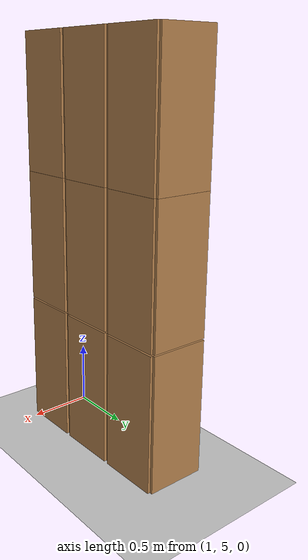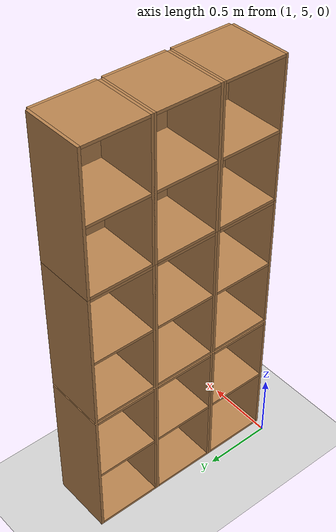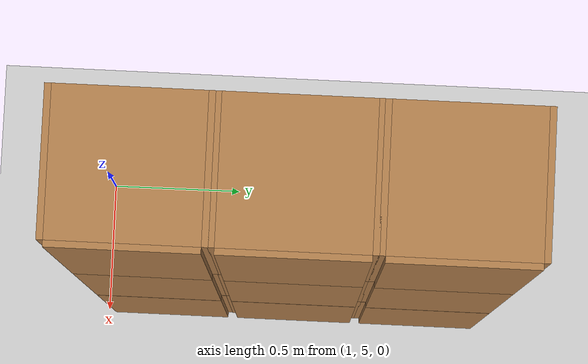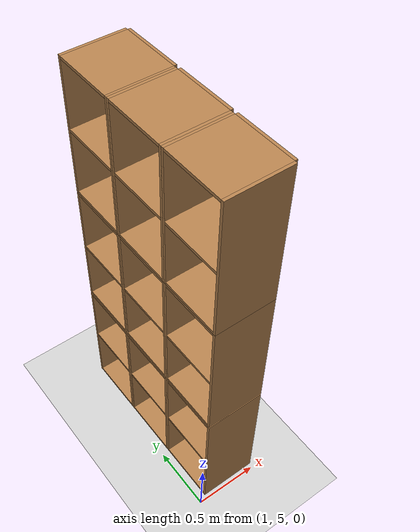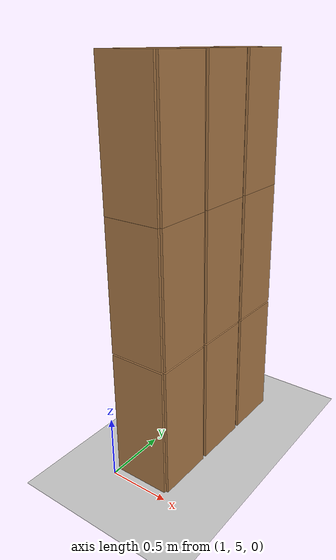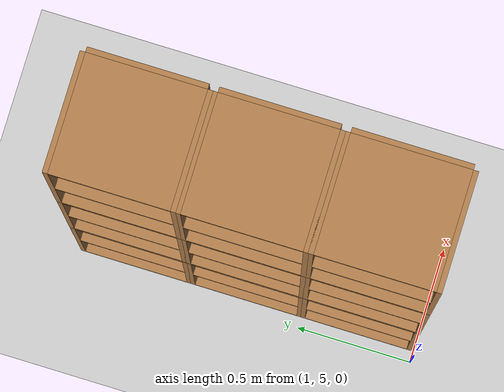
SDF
<sdf version="1.6">
 <world name="default">
  <model name="ground_plane">
   <static>1</static>
   <link name="link">
    <collision name="collision">
     <geometry><plane><normal>0 0 1</normal><size>100 100</size></plane></geometry>
     <surface>
      <contact><collide_bitmask>65535</collide_bitmask></contact>
      <friction><ode><mu>100</mu><mu2>50</mu2></ode></friction>
     </surface>
    </collision>
    <visual name="visual">
     <cast_shadows>0</cast_shadows>
     <geometry><plane><normal>0 0 1</normal><size>100 100</size></plane></geometry>
     <material>
      <script><uri>file://media/materials/scripts/gazebo.material</uri><name>Gazebo/Grey</name></script>
     </material>
    </visual>
   </link>
  </model>
  <model name="Locker18_clone_4_clone_2_clone">
   <model name="Locker18">
    <model name="Locker3">
     <model name="cabinet">
      <static>1</static>
      <link name="cabinet_bottom_plate">
       <inertial>
        <pose>0 0 -1 0 -0 0</pose>
        <inertia><ixx>2.05</ixx><ixy>0</ixy><ixz>0</ixz><iyy>2.05</iyy><iyz>0</iyz><izz>2.05</izz></inertia>
        <mass>25</mass>
       </inertial>
       <collision name="cabinet_bottom_plate_geom">
        <pose>0 0 0.01 0 -0 0</pose>
        <geometry><box><size>0.45 0.45 0.02</size></box></geometry>
       </collision>
       <visual name="cabinet_bottom_plate_geom_visual">
        <pose>0 0 0.01 0 -0 0</pose>
        <geometry><box><size>0.45 0.45 0.02</size></box></geometry>
        <material>
         <script><uri>file://media/materials/scripts/gazebo.material</uri><name>Gazebo/Wood</name></script>
        </material>
       </visual>
       <collision name="cabinet_bottom_plate_geom_cabinet_back_plate">
        <pose>0.235 0 0.51 0 -0 0</pose>
        <geometry><box><size>0.02 0.45 1.02</size></box></geometry>
       </collision>
       <visual name="cabinet_bottom_plate_geom_cabinet_back_plate_visual">
        <pose>0.235 0 0.51 0 -0 0</pose>
        <geometry><box><size>0.02 0.45 1.02</size></box></geometry>
        <material>
         <script><uri>file://media/materials/scripts/gazebo.material</uri><name>Gazebo/Wood</name></script>
        </material>
       </visual>
       <collision name="cabinet_bottom_plate_geom_cabinet_left_plate">
        <pose>0 0.235 0.51 0 -0 0</pose>
        <geometry><box><size>0.45 0.02 1.02</size></box></geometry>
       </collision>
       <visual name="cabinet_bottom_plate_geom_cabinet_left_plate_visual">
        <pose>0 0.235 0.51 0 -0 0</pose>
        <geometry><box><size>0.45 0.02 1.02</size></box></geometry>
        <material>
         <script><uri>file://media/materials/scripts/gazebo.material</uri><name>Gazebo/Wood</name></script>
        </material>
       </visual>
       <collision name="cabinet_bottom_plate_geom_cabinet_middle_plate">
        <pose>0 0 0.51 0 -0 0</pose>
        <geometry><box><size>0.45 0.45 0.02</size></box></geometry>
       </collision>
       <visual name="cabinet_bottom_plate_geom_cabinet_middle_plate_visual">
        <pose>0 0 0.51 0 -0 0</pose>
        <geometry><box><size>0.45 0.45 0.02</size></box></geometry>
        <material>
         <script><uri>file://media/materials/scripts/gazebo.material</uri><name>Gazebo/Wood</name></script>
        </material>
       </visual>
       <collision name="cabinet_bottom_plate_geom_cabinet_right_plate">
        <pose>0 -0.235 0.51 0 -0 0</pose>
        <geometry><box><size>0.45 0.02 1.02</size></box></geometry>
       </collision>
       <visual name="cabinet_bottom_plate_geom_cabinet_right_plate_visual">
        <pose>0 -0.235 0.51 0 -0 0</pose>
        <geometry><box><size>0.45 0.02 1.02</size></box></geometry>
        <material>
         <script><uri>file://media/materials/scripts/gazebo.material</uri><name>Gazebo/Wood</name></script>
        </material>
       </visual>
       <collision name="cabinet_bottom_plate_geom_cabinet_top_plate">
        <pose>0 0 1.01 0 -0 0</pose>
        <geometry><box><size>0.45 0.45 0.02</size></box></geometry>
       </collision>
       <visual name="cabinet_bottom_plate_geom_cabinet_top_plate_visual">
        <pose>0 0 1.01 0 -0 0</pose>
        <geometry><box><size>0.45 0.45 0.02</size></box></geometry>
        <material>
         <script><uri>file://media/materials/scripts/gazebo.material</uri><name>Gazebo/Wood</name></script>
        </material>
       </visual>
      </link>
      <pose>-0.676968 1.45758 0 0 -0 0</pose>
     </model>
     <model name="cabinet_clone">
      <static>1</static>
      <link name="cabinet_bottom_plate">
       <inertial>
        <pose>0 0 -1 0 -0 0</pose>
        <inertia><ixx>2.05</ixx><ixy>0</ixy><ixz>0</ixz><iyy>2.05</iyy><iyz>0</iyz><izz>2.05</izz></inertia>
        <mass>25</mass>
       </inertial>
       <collision name="cabinet_bottom_plate_geom">
        <pose>0 0 0.01 0 -0 0</pose>
        <geometry><box><size>0.45 0.45 0.02</size></box></geometry>
       </collision>
       <visual name="cabinet_bottom_plate_geom_visual">
        <pose>0 0 0.01 0 -0 0</pose>
        <geometry><box><size>0.45 0.45 0.02</size></box></geometry>
        <material>
         <script><uri>file://media/materials/scripts/gazebo.material</uri><name>Gazebo/Wood</name></script>
        </material>
       </visual>
       <collision name="cabinet_bottom_plate_geom_cabinet_back_plate">
        <pose>0.235 0 0.51 0 -0 0</pose>
        <geometry><box><size>0.02 0.45 1.02</size></box></geometry>
       </collision>
       <visual name="cabinet_bottom_plate_geom_cabinet_back_plate_visual">
        <pose>0.235 0 0.51 0 -0 0</pose>
        <geometry><box><size>0.02 0.45 1.02</size></box></geometry>
        <material>
         <script><uri>file://media/materials/scripts/gazebo.material</uri><name>Gazebo/Wood</name></script>
        </material>
       </visual>
       <collision name="cabinet_bottom_plate_geom_cabinet_left_plate">
        <pose>0 0.235 0.51 0 -0 0</pose>
        <geometry><box><size>0.45 0.02 1.02</size></box></geometry>
       </collision>
       <visual name="cabinet_bottom_plate_geom_cabinet_left_plate_visual">
        <pose>0 0.235 0.51 0 -0 0</pose>
        <geometry><box><size>0.45 0.02 1.02</size></box></geometry>
        <material>
         <script><uri>file://media/materials/scripts/gazebo.material</uri><name>Gazebo/Wood</name></script>
        </material>
       </visual>
       <collision name="cabinet_bottom_plate_geom_cabinet_middle_plate">
        <pose>0 0 0.51 0 -0 0</pose>
        <geometry><box><size>0.45 0.45 0.02</size></box></geometry>
       </collision>
       <visual name="cabinet_bottom_plate_geom_cabinet_middle_plate_visual">
        <pose>0 0 0.51 0 -0 0</pose>
        <geometry><box><size>0.45 0.45 0.02</size></box></geometry>
        <material>
         <script><uri>file://media/materials/scripts/gazebo.material</uri><name>Gazebo/Wood</name></script>
        </material>
       </visual>
       <collision name="cabinet_bottom_plate_geom_cabinet_right_plate">
        <pose>0 -0.235 0.51 0 -0 0</pose>
        <geometry><box><size>0.45 0.02 1.02</size></box></geometry>
       </collision>
       <visual name="cabinet_bottom_plate_geom_cabinet_right_plate_visual">
        <pose>0 -0.235 0.51 0 -0 0</pose>
        <geometry><box><size>0.45 0.02 1.02</size></box></geometry>
        <material>
         <script><uri>file://media/materials/scripts/gazebo.material</uri><name>Gazebo/Wood</name></script>
        </material>
       </visual>
       <collision name="cabinet_bottom_plate_geom_cabinet_top_plate">
        <pose>0 0 1.01 0 -0 0</pose>
        <geometry><box><size>0.45 0.45 0.02</size></box></geometry>
       </collision>
       <visual name="cabinet_bottom_plate_geom_cabinet_top_plate_visual">
        <pose>0 0 1.01 0 -0 0</pose>
        <geometry><box><size>0.45 0.45 0.02</size></box></geometry>
        <material>
         <script><uri>file://media/materials/scripts/gazebo.material</uri><name>Gazebo/Wood</name></script>
        </material>
       </visual>
      </link>
      <pose>-0.676968 0.970971 0 0 -0 0</pose>
     </model>
     <model name="cabinet_clone_0">
      <static>1</static>
      <link name="cabinet_bottom_plate">
       <inertial>
        <pose>0 0 -1 0 -0 0</pose>
        <inertia><ixx>2.05</ixx><ixy>0</ixy><ixz>0</ixz><iyy>2.05</iyy><iyz>0</iyz><izz>2.05</izz></inertia>
        <mass>25</mass>
       </inertial>
       <collision name="cabinet_bottom_plate_geom">
        <pose>0 0 0.01 0 -0 0</pose>
        <geometry><box><size>0.45 0.45 0.02</size></box></geometry>
       </collision>
       <visual name="cabinet_bottom_plate_geom_visual">
        <pose>0 0 0.01 0 -0 0</pose>
        <geometry><box><size>0.45 0.45 0.02</size></box></geometry>
        <material>
         <script><uri>file://media/materials/scripts/gazebo.material</uri><name>Gazebo/Wood</name></script>
        </material>
       </visual>
       <collision name="cabinet_bottom_plate_geom_cabinet_back_plate">
        <pose>0.235 0 0.51 0 -0 0</pose>
        <geometry><box><size>0.02 0.45 1.02</size></box></geometry>
       </collision>
       <visual name="cabinet_bottom_plate_geom_cabinet_back_plate_visual">
        <pose>0.235 0 0.51 0 -0 0</pose>
        <geometry><box><size>0.02 0.45 1.02</size></box></geometry>
        <material>
         <script><uri>file://media/materials/scripts/gazebo.material</uri><name>Gazebo/Wood</name></script>
        </material>
       </visual>
       <collision name="cabinet_bottom_plate_geom_cabinet_left_plate">
        <pose>0 0.235 0.51 0 -0 0</pose>
        <geometry><box><size>0.45 0.02 1.02</size></box></geometry>
       </collision>
       <visual name="cabinet_bottom_plate_geom_cabinet_left_plate_visual">
        <pose>0 0.235 0.51 0 -0 0</pose>
        <geometry><box><size>0.45 0.02 1.02</size></box></geometry>
        <material>
         <script><uri>file://media/materials/scripts/gazebo.material</uri><name>Gazebo/Wood</name></script>
        </material>
       </visual>
       <collision name="cabinet_bottom_plate_geom_cabinet_middle_plate">
        <pose>0 0 0.51 0 -0 0</pose>
        <geometry><box><size>0.45 0.45 0.02</size></box></geometry>
       </collision>
       <visual name="cabinet_bottom_plate_geom_cabinet_middle_plate_visual">
        <pose>0 0 0.51 0 -0 0</pose>
        <geometry><box><size>0.45 0.45 0.02</size></box></geometry>
        <material>
         <script><uri>file://media/materials/scripts/gazebo.material</uri><name>Gazebo/Wood</name></script>
        </material>
       </visual>
       <collision name="cabinet_bottom_plate_geom_cabinet_right_plate">
        <pose>0 -0.235 0.51 0 -0 0</pose>
        <geometry><box><size>0.45 0.02 1.02</size></box></geometry>
       </collision>
       <visual name="cabinet_bottom_plate_geom_cabinet_right_plate_visual">
        <pose>0 -0.235 0.51 0 -0 0</pose>
        <geometry><box><size>0.45 0.02 1.02</size></box></geometry>
        <material>
         <script><uri>file://media/materials/scripts/gazebo.material</uri><name>Gazebo/Wood</name></script>
        </material>
       </visual>
       <collision name="cabinet_bottom_plate_geom_cabinet_top_plate">
        <pose>0 0 1.01 0 -0 0</pose>
        <geometry><box><size>0.45 0.45 0.02</size></box></geometry>
       </collision>
       <visual name="cabinet_bottom_plate_geom_cabinet_top_plate_visual">
        <pose>0 0 1.01 0 -0 0</pose>
        <geometry><box><size>0.45 0.45 0.02</size></box></geometry>
        <material>
         <script><uri>file://media/materials/scripts/gazebo.material</uri><name>Gazebo/Wood</name></script>
        </material>
       </visual>
      </link>
      <pose>-0.676968 0.48391 0 0 -0 0</pose>
     </model>
     <static>0</static>
     <pose>0 3e-06 -1.02763 0 -0 0</pose>
    </model>
    <model name="Locker3_clone">
     <model name="cabinet">
      <static>1</static>
      <link name="cabinet_bottom_plate">
       <inertial>
        <pose>0 0 -1 0 -0 0</pose>
        <inertia><ixx>2.05</ixx><ixy>0</ixy><ixz>0</ixz><iyy>2.05</iyy><iyz>0</iyz><izz>2.05</izz></inertia>
        <mass>25</mass>
       </inertial>
       <collision name="cabinet_bottom_plate_geom">
        <pose>0 0 0.01 0 -0 0</pose>
        <geometry><box><size>0.45 0.45 0.02</size></box></geometry>
       </collision>
       <visual name="cabinet_bottom_plate_geom_visual">
        <pose>0 0 0.01 0 -0 0</pose>
        <geometry><box><size>0.45 0.45 0.02</size></box></geometry>
        <material>
         <script><uri>file://media/materials/scripts/gazebo.material</uri><name>Gazebo/Wood</name></script>
        </material>
       </visual>
       <collision name="cabinet_bottom_plate_geom_cabinet_back_plate">
        <pose>0.235 0 0.51 0 -0 0</pose>
        <geometry><box><size>0.02 0.45 1.02</size></box></geometry>
       </collision>
       <visual name="cabinet_bottom_plate_geom_cabinet_back_plate_visual">
        <pose>0.235 0 0.51 0 -0 0</pose>
        <geometry><box><size>0.02 0.45 1.02</size></box></geometry>
        <material>
         <script><uri>file://media/materials/scripts/gazebo.material</uri><name>Gazebo/Wood</name></script>
        </material>
       </visual>
       <collision name="cabinet_bottom_plate_geom_cabinet_left_plate">
        <pose>0 0.235 0.51 0 -0 0</pose>
        <geometry><box><size>0.45 0.02 1.02</size></box></geometry>
       </collision>
       <visual name="cabinet_bottom_plate_geom_cabinet_left_plate_visual">
        <pose>0 0.235 0.51 0 -0 0</pose>
        <geometry><box><size>0.45 0.02 1.02</size></box></geometry>
        <material>
         <script><uri>file://media/materials/scripts/gazebo.material</uri><name>Gazebo/Wood</name></script>
        </material>
       </visual>
       <collision name="cabinet_bottom_plate_geom_cabinet_middle_plate">
        <pose>0 0 0.51 0 -0 0</pose>
        <geometry><box><size>0.45 0.45 0.02</size></box></geometry>
       </collision>
       <visual name="cabinet_bottom_plate_geom_cabinet_middle_plate_visual">
        <pose>0 0 0.51 0 -0 0</pose>
        <geometry><box><size>0.45 0.45 0.02</size></box></geometry>
        <material>
         <script><uri>file://media/materials/scripts/gazebo.material</uri><name>Gazebo/Wood</name></script>
        </material>
       </visual>
       <collision name="cabinet_bottom_plate_geom_cabinet_right_plate">
        <pose>0 -0.235 0.51 0 -0 0</pose>
        <geometry><box><size>0.45 0.02 1.02</size></box></geometry>
       </collision>
       <visual name="cabinet_bottom_plate_geom_cabinet_right_plate_visual">
        <pose>0 -0.235 0.51 0 -0 0</pose>
        <geometry><box><size>0.45 0.02 1.02</size></box></geometry>
        <material>
         <script><uri>file://media/materials/scripts/gazebo.material</uri><name>Gazebo/Wood</name></script>
        </material>
       </visual>
       <collision name="cabinet_bottom_plate_geom_cabinet_top_plate">
        <pose>0 0 1.01 0 -0 0</pose>
        <geometry><box><size>0.45 0.45 0.02</size></box></geometry>
       </collision>
       <visual name="cabinet_bottom_plate_geom_cabinet_top_plate_visual">
        <pose>0 0 1.01 0 -0 0</pose>
        <geometry><box><size>0.45 0.45 0.02</size></box></geometry>
        <material>
         <script><uri>file://media/materials/scripts/gazebo.material</uri><name>Gazebo/Wood</name></script>
        </material>
       </visual>
      </link>
      <pose>-0.676968 1.45758 0 0 -0 0</pose>
     </model>
     <model name="cabinet_clone">
      <static>1</static>
      <link name="cabinet_bottom_plate">
       <inertial>
        <pose>0 0 -1 0 -0 0</pose>
        <inertia><ixx>2.05</ixx><ixy>0</ixy><ixz>0</ixz><iyy>2.05</iyy><iyz>0</iyz><izz>2.05</izz></inertia>
        <mass>25</mass>
       </inertial>
       <collision name="cabinet_bottom_plate_geom">
        <pose>0 0 0.01 0 -0 0</pose>
        <geometry><box><size>0.45 0.45 0.02</size></box></geometry>
       </collision>
       <visual name="cabinet_bottom_plate_geom_visual">
        <pose>0 0 0.01 0 -0 0</pose>
        <geometry><box><size>0.45 0.45 0.02</size></box></geometry>
        <material>
         <script><uri>file://media/materials/scripts/gazebo.material</uri><name>Gazebo/Wood</name></script>
        </material>
       </visual>
       <collision name="cabinet_bottom_plate_geom_cabinet_back_plate">
        <pose>0.235 0 0.51 0 -0 0</pose>
        <geometry><box><size>0.02 0.45 1.02</size></box></geometry>
       </collision>
       <visual name="cabinet_bottom_plate_geom_cabinet_back_plate_visual">
        <pose>0.235 0 0.51 0 -0 0</pose>
        <geometry><box><size>0.02 0.45 1.02</size></box></geometry>
        <material>
         <script><uri>file://media/materials/scripts/gazebo.material</uri><name>Gazebo/Wood</name></script>
        </material>
       </visual>
       <collision name="cabinet_bottom_plate_geom_cabinet_left_plate">
        <pose>0 0.235 0.51 0 -0 0</pose>
        <geometry><box><size>0.45 0.02 1.02</size></box></geometry>
       </collision>
       <visual name="cabinet_bottom_plate_geom_cabinet_left_plate_visual">
        <pose>0 0.235 0.51 0 -0 0</pose>
        <geometry><box><size>0.45 0.02 1.02</size></box></geometry>
        <material>
         <script><uri>file://media/materials/scripts/gazebo.material</uri><name>Gazebo/Wood</name></script>
        </material>
       </visual>
       <collision name="cabinet_bottom_plate_geom_cabinet_middle_plate">
        <pose>0 0 0.51 0 -0 0</pose>
        <geometry><box><size>0.45 0.45 0.02</size></box></geometry>
       </collision>
       <visual name="cabinet_bottom_plate_geom_cabinet_middle_plate_visual">
        <pose>0 0 0.51 0 -0 0</pose>
        <geometry><box><size>0.45 0.45 0.02</size></box></geometry>
        <material>
         <script><uri>file://media/materials/scripts/gazebo.material</uri><name>Gazebo/Wood</name></script>
        </material>
       </visual>
       <collision name="cabinet_bottom_plate_geom_cabinet_right_plate">
        <pose>0 -0.235 0.51 0 -0 0</pose>
        <geometry><box><size>0.45 0.02 1.02</size></box></geometry>
       </collision>
       <visual name="cabinet_bottom_plate_geom_cabinet_right_plate_visual">
        <pose>0 -0.235 0.51 0 -0 0</pose>
        <geometry><box><size>0.45 0.02 1.02</size></box></geometry>
        <material>
         <script><uri>file://media/materials/scripts/gazebo.material</uri><name>Gazebo/Wood</name></script>
        </material>
       </visual>
       <collision name="cabinet_bottom_plate_geom_cabinet_top_plate">
        <pose>0 0 1.01 0 -0 0</pose>
        <geometry><box><size>0.45 0.45 0.02</size></box></geometry>
       </collision>
       <visual name="cabinet_bottom_plate_geom_cabinet_top_plate_visual">
        <pose>0 0 1.01 0 -0 0</pose>
        <geometry><box><size>0.45 0.45 0.02</size></box></geometry>
        <material>
         <script><uri>file://media/materials/scripts/gazebo.material</uri><name>Gazebo/Wood</name></script>
        </material>
       </visual>
      </link>
      <pose>-0.676968 0.970971 0 0 -0 0</pose>
     </model>
     <model name="cabinet_clone_0">
      <static>1</static>
      <link name="cabinet_bottom_plate">
       <inertial>
        <pose>0 0 -1 0 -0 0</pose>
        <inertia><ixx>2.05</ixx><ixy>0</ixy><ixz>0</ixz><iyy>2.05</iyy><iyz>0</iyz><izz>2.05</izz></inertia>
        <mass>25</mass>
       </inertial>
       <collision name="cabinet_bottom_plate_geom">
        <pose>0 0 0.01 0 -0 0</pose>
        <geometry><box><size>0.45 0.45 0.02</size></box></geometry>
       </collision>
       <visual name="cabinet_bottom_plate_geom_visual">
        <pose>0 0 0.01 0 -0 0</pose>
        <geometry><box><size>0.45 0.45 0.02</size></box></geometry>
        <material>
         <script><uri>file://media/materials/scripts/gazebo.material</uri><name>Gazebo/Wood</name></script>
        </material>
       </visual>
       <collision name="cabinet_bottom_plate_geom_cabinet_back_plate">
        <pose>0.235 0 0.51 0 -0 0</pose>
        <geometry><box><size>0.02 0.45 1.02</size></box></geometry>
       </collision>
       <visual name="cabinet_bottom_plate_geom_cabinet_back_plate_visual">
        <pose>0.235 0 0.51 0 -0 0</pose>
        <geometry><box><size>0.02 0.45 1.02</size></box></geometry>
        <material>
         <script><uri>file://media/materials/scripts/gazebo.material</uri><name>Gazebo/Wood</name></script>
        </material>
       </visual>
       <collision name="cabinet_bottom_plate_geom_cabinet_left_plate">
        <pose>0 0.235 0.51 0 -0 0</pose>
        <geometry><box><size>0.45 0.02 1.02</size></box></geometry>
       </collision>
       <visual name="cabinet_bottom_plate_geom_cabinet_left_plate_visual">
        <pose>0 0.235 0.51 0 -0 0</pose>
        <geometry><box><size>0.45 0.02 1.02</size></box></geometry>
        <material>
         <script><uri>file://media/materials/scripts/gazebo.material</uri><name>Gazebo/Wood</name></script>
        </material>
       </visual>
       <collision name="cabinet_bottom_plate_geom_cabinet_middle_plate">
        <pose>0 0 0.51 0 -0 0</pose>
        <geometry><box><size>0.45 0.45 0.02</size></box></geometry>
       </collision>
       <visual name="cabinet_bottom_plate_geom_cabinet_middle_plate_visual">
        <pose>0 0 0.51 0 -0 0</pose>
        <geometry><box><size>0.45 0.45 0.02</size></box></geometry>
        <material>
         <script><uri>file://media/materials/scripts/gazebo.material</uri><name>Gazebo/Wood</name></script>
        </material>
       </visual>
       <collision name="cabinet_bottom_plate_geom_cabinet_right_plate">
        <pose>0 -0.235 0.51 0 -0 0</pose>
        <geometry><box><size>0.45 0.02 1.02</size></box></geometry>
       </collision>
       <visual name="cabinet_bottom_plate_geom_cabinet_right_plate_visual">
        <pose>0 -0.235 0.51 0 -0 0</pose>
        <geometry><box><size>0.45 0.02 1.02</size></box></geometry>
        <material>
         <script><uri>file://media/materials/scripts/gazebo.material</uri><name>Gazebo/Wood</name></script>
        </material>
       </visual>
       <collision name="cabinet_bottom_plate_geom_cabinet_top_plate">
        <pose>0 0 1.01 0 -0 0</pose>
        <geometry><box><size>0.45 0.45 0.02</size></box></geometry>
       </collision>
       <visual name="cabinet_bottom_plate_geom_cabinet_top_plate_visual">
        <pose>0 0 1.01 0 -0 0</pose>
        <geometry><box><size>0.45 0.45 0.02</size></box></geometry>
        <material>
         <script><uri>file://media/materials/scripts/gazebo.material</uri><name>Gazebo/Wood</name></script>
        </material>
       </visual>
      </link>
      <pose>-0.676968 0.48391 0 0 -0 0</pose>
     </model>
     <static>0</static>
     <pose>0 3e-06 0.003717 0 -0 0</pose>
    </model>
    <model name="Locker3_clone_clone">
     <model name="cabinet">
      <static>1</static>
      <link name="cabinet_bottom_plate">
       <inertial>
        <pose>0 0 -1 0 -0 0</pose>
        <inertia><ixx>2.05</ixx><ixy>0</ixy><ixz>0</ixz><iyy>2.05</iyy><iyz>0</iyz><izz>2.05</izz></inertia>
        <mass>25</mass>
       </inertial>
       <collision name="cabinet_bottom_plate_geom">
        <pose>0 0 0.01 0 -0 0</pose>
        <geometry><box><size>0.45 0.45 0.02</size></box></geometry>
       </collision>
       <visual name="cabinet_bottom_plate_geom_visual">
        <pose>0 0 0.01 0 -0 0</pose>
        <geometry><box><size>0.45 0.45 0.02</size></box></geometry>
        <material>
         <script><uri>file://media/materials/scripts/gazebo.material</uri><name>Gazebo/Wood</name></script>
        </material>
       </visual>
       <collision name="cabinet_bottom_plate_geom_cabinet_back_plate">
        <pose>0.235 0 0.51 0 -0 0</pose>
        <geometry><box><size>0.02 0.45 1.02</size></box></geometry>
       </collision>
       <visual name="cabinet_bottom_plate_geom_cabinet_back_plate_visual">
        <pose>0.235 0 0.51 0 -0 0</pose>
        <geometry><box><size>0.02 0.45 1.02</size></box></geometry>
        <material>
         <script><uri>file://media/materials/scripts/gazebo.material</uri><name>Gazebo/Wood</name></script>
        </material>
       </visual>
       <collision name="cabinet_bottom_plate_geom_cabinet_left_plate">
        <pose>0 0.235 0.51 0 -0 0</pose>
        <geometry><box><size>0.45 0.02 1.02</size></box></geometry>
       </collision>
       <visual name="cabinet_bottom_plate_geom_cabinet_left_plate_visual">
        <pose>0 0.235 0.51 0 -0 0</pose>
        <geometry><box><size>0.45 0.02 1.02</size></box></geometry>
        <material>
         <script><uri>file://media/materials/scripts/gazebo.material</uri><name>Gazebo/Wood</name></script>
        </material>
       </visual>
       <collision name="cabinet_bottom_plate_geom_cabinet_middle_plate">
        <pose>0 0 0.51 0 -0 0</pose>
        <geometry><box><size>0.45 0.45 0.02</size></box></geometry>
       </collision>
       <visual name="cabinet_bottom_plate_geom_cabinet_middle_plate_visual">
        <pose>0 0 0.51 0 -0 0</pose>
        <geometry><box><size>0.45 0.45 0.02</size></box></geometry>
        <material>
         <script><uri>file://media/materials/scripts/gazebo.material</uri><name>Gazebo/Wood</name></script>
        </material>
       </visual>
       <collision name="cabinet_bottom_plate_geom_cabinet_right_plate">
        <pose>0 -0.235 0.51 0 -0 0</pose>
        <geometry><box><size>0.45 0.02 1.02</size></box></geometry>
       </collision>
       <visual name="cabinet_bottom_plate_geom_cabinet_right_plate_visual">
        <pose>0 -0.235 0.51 0 -0 0</pose>
        <geometry><box><size>0.45 0.02 1.02</size></box></geometry>
        <material>
         <script><uri>file://media/materials/scripts/gazebo.material</uri><name>Gazebo/Wood</name></script>
        </material>
       </visual>
       <collision name="cabinet_bottom_plate_geom_cabinet_top_plate">
        <pose>0 0 1.01 0 -0 0</pose>
        <geometry><box><size>0.45 0.45 0.02</size></box></geometry>
       </collision>
       <visual name="cabinet_bottom_plate_geom_cabinet_top_plate_visual">
        <pose>0 0 1.01 0 -0 0</pose>
        <geometry><box><size>0.45 0.45 0.02</size></box></geometry>
        <material>
         <script><uri>file://media/materials/scripts/gazebo.material</uri><name>Gazebo/Wood</name></script>
        </material>
       </visual>
      </link>
      <pose>-0.676968 1.45758 0 0 -0 0</pose>
     </model>
     <model name="cabinet_clone">
      <static>1</static>
      <link name="cabinet_bottom_plate">
       <inertial>
        <pose>0 0 -1 0 -0 0</pose>
        <inertia><ixx>2.05</ixx><ixy>0</ixy><ixz>0</ixz><iyy>2.05</iyy><iyz>0</iyz><izz>2.05</izz></inertia>
        <mass>25</mass>
       </inertial>
       <collision name="cabinet_bottom_plate_geom">
        <pose>0 0 0.01 0 -0 0</pose>
        <geometry><box><size>0.45 0.45 0.02</size></box></geometry>
       </collision>
       <visual name="cabinet_bottom_plate_geom_visual">
        <pose>0 0 0.01 0 -0 0</pose>
        <geometry><box><size>0.45 0.45 0.02</size></box></geometry>
        <material>
         <script><uri>file://media/materials/scripts/gazebo.material</uri><name>Gazebo/Wood</name></script>
        </material>
       </visual>
       <collision name="cabinet_bottom_plate_geom_cabinet_back_plate">
        <pose>0.235 0 0.51 0 -0 0</pose>
        <geometry><box><size>0.02 0.45 1.02</size></box></geometry>
       </collision>
       <visual name="cabinet_bottom_plate_geom_cabinet_back_plate_visual">
        <pose>0.235 0 0.51 0 -0 0</pose>
        <geometry><box><size>0.02 0.45 1.02</size></box></geometry>
        <material>
         <script><uri>file://media/materials/scripts/gazebo.material</uri><name>Gazebo/Wood</name></script>
        </material>
       </visual>
       <collision name="cabinet_bottom_plate_geom_cabinet_left_plate">
        <pose>0 0.235 0.51 0 -0 0</pose>
        <geometry><box><size>0.45 0.02 1.02</size></box></geometry>
       </collision>
       <visual name="cabinet_bottom_plate_geom_cabinet_left_plate_visual">
        <pose>0 0.235 0.51 0 -0 0</pose>
        <geometry><box><size>0.45 0.02 1.02</size></box></geometry>
        <material>
         <script><uri>file://media/materials/scripts/gazebo.material</uri><name>Gazebo/Wood</name></script>
        </material>
       </visual>
       <collision name="cabinet_bottom_plate_geom_cabinet_middle_plate">
        <pose>0 0 0.51 0 -0 0</pose>
        <geometry><box><size>0.45 0.45 0.02</size></box></geometry>
       </collision>
       <visual name="cabinet_bottom_plate_geom_cabinet_middle_plate_visual">
        <pose>0 0 0.51 0 -0 0</pose>
        <geometry><box><size>0.45 0.45 0.02</size></box></geometry>
        <material>
         <script><uri>file://media/materials/scripts/gazebo.material</uri><name>Gazebo/Wood</name></script>
        </material>
       </visual>
       <collision name="cabinet_bottom_plate_geom_cabinet_right_plate">
        <pose>0 -0.235 0.51 0 -0 0</pose>
        <geometry><box><size>0.45 0.02 1.02</size></box></geometry>
       </collision>
       <visual name="cabinet_bottom_plate_geom_cabinet_right_plate_visual">
        <pose>0 -0.235 0.51 0 -0 0</pose>
        <geometry><box><size>0.45 0.02 1.02</size></box></geometry>
        <material>
         <script><uri>file://media/materials/scripts/gazebo.material</uri><name>Gazebo/Wood</name></script>
        </material>
       </visual>
       <collision name="cabinet_bottom_plate_geom_cabinet_top_plate">
        <pose>0 0 1.01 0 -0 0</pose>
        <geometry><box><size>0.45 0.45 0.02</size></box></geometry>
       </collision>
       <visual name="cabinet_bottom_plate_geom_cabinet_top_plate_visual">
        <pose>0 0 1.01 0 -0 0</pose>
        <geometry><box><size>0.45 0.45 0.02</size></box></geometry>
        <material>
         <script><uri>file://media/materials/scripts/gazebo.material</uri><name>Gazebo/Wood</name></script>
        </material>
       </visual>
      </link>
      <pose>-0.676968 0.970971 0 0 -0 0</pose>
     </model>
     <model name="cabinet_clone_0">
      <static>1</static>
      <link name="cabinet_bottom_plate">
       <inertial>
        <pose>0 0 -1 0 -0 0</pose>
        <inertia><ixx>2.05</ixx><ixy>0</ixy><ixz>0</ixz><iyy>2.05</iyy><iyz>0</iyz><izz>2.05</izz></inertia>
        <mass>25</mass>
       </inertial>
       <collision name="cabinet_bottom_plate_geom">
        <pose>0 0 0.01 0 -0 0</pose>
        <geometry><box><size>0.45 0.45 0.02</size></box></geometry>
       </collision>
       <visual name="cabinet_bottom_plate_geom_visual">
        <pose>0 0 0.01 0 -0 0</pose>
        <geometry><box><size>0.45 0.45 0.02</size></box></geometry>
        <material>
         <script><uri>file://media/materials/scripts/gazebo.material</uri><name>Gazebo/Wood</name></script>
        </material>
       </visual>
       <collision name="cabinet_bottom_plate_geom_cabinet_back_plate">
        <pose>0.235 0 0.51 0 -0 0</pose>
        <geometry><box><size>0.02 0.45 1.02</size></box></geometry>
       </collision>
       <visual name="cabinet_bottom_plate_geom_cabinet_back_plate_visual">
        <pose>0.235 0 0.51 0 -0 0</pose>
        <geometry><box><size>0.02 0.45 1.02</size></box></geometry>
        <material>
         <script><uri>file://media/materials/scripts/gazebo.material</uri><name>Gazebo/Wood</name></script>
        </material>
       </visual>
       <collision name="cabinet_bottom_plate_geom_cabinet_left_plate">
        <pose>0 0.235 0.51 0 -0 0</pose>
        <geometry><box><size>0.45 0.02 1.02</size></box></geometry>
       </collision>
       <visual name="cabinet_bottom_plate_geom_cabinet_left_plate_visual">
        <pose>0 0.235 0.51 0 -0 0</pose>
        <geometry><box><size>0.45 0.02 1.02</size></box></geometry>
        <material>
         <script><uri>file://media/materials/scripts/gazebo.material</uri><name>Gazebo/Wood</name></script>
        </material>
       </visual>
       <collision name="cabinet_bottom_plate_geom_cabinet_middle_plate">
        <pose>0 0 0.51 0 -0 0</pose>
        <geometry><box><size>0.45 0.45 0.02</size></box></geometry>
       </collision>
       <visual name="cabinet_bottom_plate_geom_cabinet_middle_plate_visual">
        <pose>0 0 0.51 0 -0 0</pose>
        <geometry><box><size>0.45 0.45 0.02</size></box></geometry>
        <material>
         <script><uri>file://media/materials/scripts/gazebo.material</uri><name>Gazebo/Wood</name></script>
        </material>
       </visual>
       <collision name="cabinet_bottom_plate_geom_cabinet_right_plate">
        <pose>0 -0.235 0.51 0 -0 0</pose>
        <geometry><box><size>0.45 0.02 1.02</size></box></geometry>
       </collision>
       <visual name="cabinet_bottom_plate_geom_cabinet_right_plate_visual">
        <pose>0 -0.235 0.51 0 -0 0</pose>
        <geometry><box><size>0.45 0.02 1.02</size></box></geometry>
        <material>
         <script><uri>file://media/materials/scripts/gazebo.material</uri><name>Gazebo/Wood</name></script>
        </material>
       </visual>
       <collision name="cabinet_bottom_plate_geom_cabinet_top_plate">
        <pose>0 0 1.01 0 -0 0</pose>
        <geometry><box><size>0.45 0.45 0.02</size></box></geometry>
       </collision>
       <visual name="cabinet_bottom_plate_geom_cabinet_top_plate_visual">
        <pose>0 0 1.01 0 -0 0</pose>
        <geometry><box><size>0.45 0.45 0.02</size></box></geometry>
        <material>
         <script><uri>file://media/materials/scripts/gazebo.material</uri><name>Gazebo/Wood</name></script>
        </material>
       </visual>
      </link>
      <pose>-0.676968 0.48391 0 0 -0 0</pose>
     </model>
     <static>0</static>
     <pose>0 3e-06 1.02391 0 -0 0</pose>
    </model>
    <static>0</static>
    <pose>-0 4e-06 4e-06 0 -0 0</pose>
   </model>
   <static>0</static>
   <pose>1.94577 4.77241 1.08672 0 -0 0</pose>
  </model>
 </world>
</sdf>
